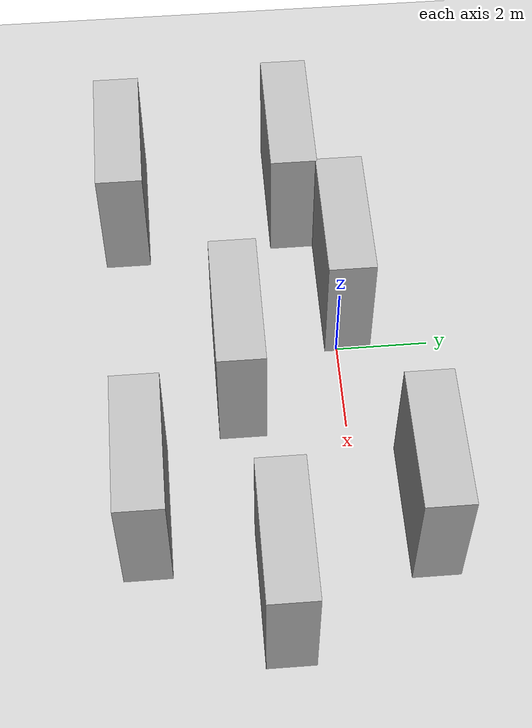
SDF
<sdf version="1.7">
 <world name="default">
  <light name="sun" type="directional">
   <pose>0 0 10 0 -0 0</pose>
   <diffuse>0.8 0.8 0.8 1</diffuse>
   <specular>0.2 0.2 0.2 1</specular>
   <attenuation>
    <range>1000</range>
    <constant>0.9</constant>
    <linear>0.01</linear>
    <quadratic>0.001</quadratic>
   </attenuation>
   <direction>-0.5 0.1 -0.9</direction>
   <spot><inner_angle>0</inner_angle><outer_angle>0</outer_angle><falloff>0</falloff></spot>
  </light>
  <model name="ground_plane">
   <static>1</static>
   <link name="link">
    <collision name="collision">
     <geometry><plane><normal>0 0 1</normal><size>100 100</size></plane></geometry>
     <surface>
      <contact><collide_bitmask>65535</collide_bitmask></contact>
      <friction><ode><mu>100</mu><mu2>50</mu2></ode></friction>
     </surface>
    </collision>
    <visual name="visual">
     <cast_shadows>0</cast_shadows>
     <geometry><plane><normal>0 0 1</normal><size>100 100</size></plane></geometry>
     <material>
      <script><uri>file://media/materials/scripts/gazebo.material</uri><name>Gazebo/Grey</name></script>
     </material>
    </visual>
   </link>
  </model>
  <gravity>0 0 -9.8</gravity>
  <magnetic_field>6e-06 2.3e-05 -4.2e-05</magnetic_field>
  <atmosphere type="adiabatic"/>
  <physics type="ode">
   <max_step_size>0.001</max_step_size>
   <real_time_factor>1</real_time_factor>
   <real_time_update_rate>1000</real_time_update_rate>
  </physics>
  <scene><ambient>0.4 0.4 0.4 1</ambient><background>0.7 0.7 0.7 1</background><shadows>1</shadows></scene>
  <audio><device>default</device></audio>
  <spherical_coordinates>
   <surface_model>EARTH_WGS84</surface_model>
   <latitude_deg>0</latitude_deg>
   <longitude_deg>0</longitude_deg>
   <elevation>0</elevation>
   <heading_deg>0</heading_deg>
  </spherical_coordinates>
  <model name="brick_box_3x1x3">
   <static>1</static>
   <link name="chassis">
    <pose>0 0 1.5 0 -0 0</pose>
    <collision name="collision"><geometry><box><size>3 1 3</size></box></geometry></collision>
    <visual name="visual">
     <geometry><mesh><uri>model://brick_box_3x1x3/meshes/simple_box.dae</uri><scale>3 1 3</scale></mesh></geometry>
     <material>
      <script>
       <uri>model://brick_box_3x1x3/materials/scripts</uri>
       <uri>model://brick_box_3x1x3/materials/textures</uri>
       <name>BrickBox/Diffuse</name>
      </script>
     </material>
    </visual>
   </link>
   <pose>-4.40761 -0.731515 0 0 -0 0</pose>
  </model>
  <model name="brick_box_3x1x3_0">
   <static>1</static>
   <link name="chassis">
    <pose>0 0 1.5 0 -0 0</pose>
    <collision name="collision"><geometry><box><size>3 1 3</size></box></geometry></collision>
    <visual name="visual">
     <geometry><mesh><uri>model://brick_box_3x1x3/meshes/simple_box.dae</uri><scale>3 1 3</scale></mesh></geometry>
     <material>
      <script>
       <uri>model://brick_box_3x1x3/materials/scripts</uri>
       <uri>model://brick_box_3x1x3/materials/textures</uri>
       <name>BrickBox/Diffuse</name>
      </script>
     </material>
    </visual>
   </link>
   <pose>-1.46128 0.236192 0 0 -0 0</pose>
  </model>
  <model name="brick_box_3x1x3_1">
   <static>1</static>
   <link name="chassis">
    <pose>0 0 1.5 0 -0 0</pose>
    <collision name="collision"><geometry><box><size>3 1 3</size></box></geometry></collision>
    <visual name="visual">
     <geometry><mesh><uri>model://brick_box_3x1x3/meshes/simple_box.dae</uri><scale>3 1 3</scale></mesh></geometry>
     <material>
      <script>
       <uri>model://brick_box_3x1x3/materials/scripts</uri>
       <uri>model://brick_box_3x1x3/materials/textures</uri>
       <name>BrickBox/Diffuse</name>
      </script>
     </material>
    </visual>
   </link>
   <pose>-4.14693 -4.51596 0 0 -0 0</pose>
  </model>
  <model name="brick_box_3x1x3_2">
   <static>1</static>
   <link name="chassis">
    <pose>0 0 1.5 0 -0 0</pose>
    <collision name="collision"><geometry><box><size>3 1 3</size></box></geometry></collision>
    <visual name="visual">
     <geometry><mesh><uri>model://brick_box_3x1x3/meshes/simple_box.dae</uri><scale>3 1 3</scale></mesh></geometry>
     <material>
      <script>
       <uri>model://brick_box_3x1x3/materials/scripts</uri>
       <uri>model://brick_box_3x1x3/materials/textures</uri>
       <name>BrickBox/Diffuse</name>
      </script>
     </material>
    </visual>
   </link>
   <pose>3.76239 -4.33253 0 0 -0 0</pose>
  </model>
  <model name="brick_box_3x1x3_2_clone">
   <static>1</static>
   <link name="chassis">
    <pose>0 0 1.5 0 -0 0</pose>
    <collision name="collision"><geometry><box><size>3 1 3</size></box></geometry></collision>
    <visual name="visual">
     <geometry><mesh><uri>model://brick_box_3x1x3/meshes/simple_box.dae</uri><scale>3 1 3</scale></mesh></geometry>
     <material>
      <script>
       <uri>model://brick_box_3x1x3/materials/scripts</uri>
       <uri>model://brick_box_3x1x3/materials/textures</uri>
       <name>BrickBox/Diffuse</name>
      </script>
     </material>
    </visual>
   </link>
   <pose>5.81227 -1.62637 0 0 -0 0</pose>
  </model>
  <model name="brick_box_3x1x3_2_clone_0">
   <static>1</static>
   <link name="chassis">
    <pose>0 0 1.5 0 -0 0</pose>
    <collision name="collision"><geometry><box><size>3 1 3</size></box></geometry></collision>
    <visual name="visual">
     <geometry><mesh><uri>model://brick_box_3x1x3/meshes/simple_box.dae</uri><scale>3 1 3</scale></mesh></geometry>
     <material>
      <script>
       <uri>model://brick_box_3x1x3/materials/scripts</uri>
       <uri>model://brick_box_3x1x3/materials/textures</uri>
       <name>BrickBox/Diffuse</name>
      </script>
     </material>
    </visual>
   </link>
   <pose>4.11687 1.44949 0 0 -0 0</pose>
  </model>
  <model name="brick_box_3x1x3_2_clone_1">
   <static>1</static>
   <link name="chassis">
    <pose>0 0 1.5 0 -0 0</pose>
    <collision name="collision"><geometry><box><size>3 1 3</size></box></geometry></collision>
    <visual name="visual">
     <geometry><mesh><uri>model://brick_box_3x1x3/meshes/simple_box.dae</uri><scale>3 1 3</scale></mesh></geometry>
     <material>
      <script>
       <uri>model://brick_box_3x1x3/materials/scripts</uri>
       <uri>model://brick_box_3x1x3/materials/textures</uri>
       <name>BrickBox/Diffuse</name>
      </script>
     </material>
    </visual>
   </link>
   <pose>0.598465 -2.20693 0 0 -0 0</pose>
  </model>
 </world>
</sdf>
